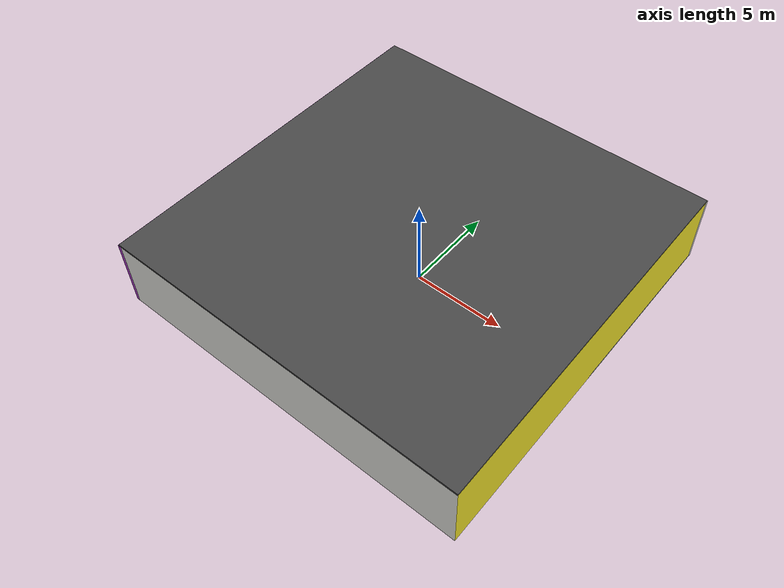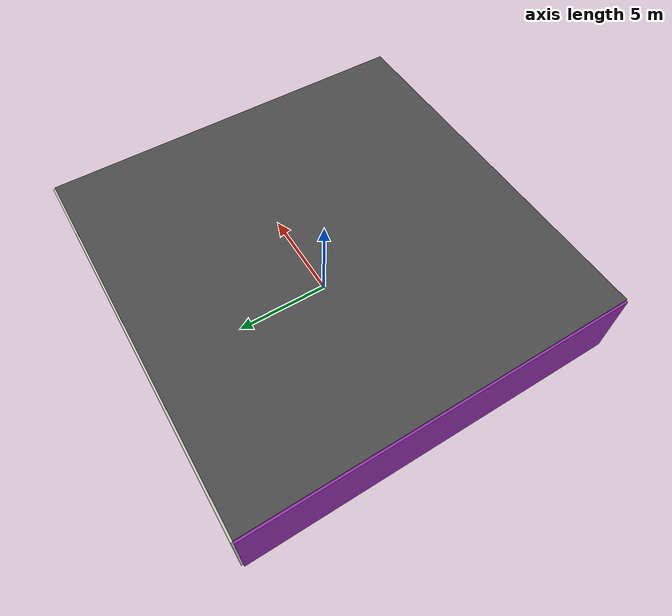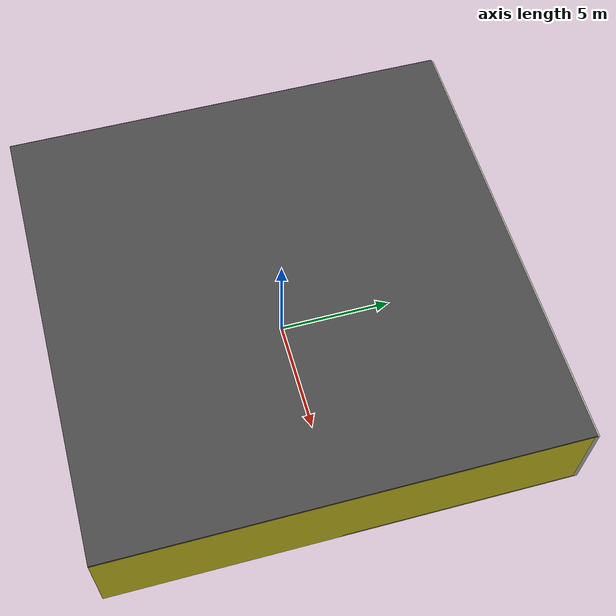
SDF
<sdf version="1.4">
 <world name="default">
  <physics type="ode">
   <max_step_size>0.001</max_step_size>
   <real_time_factor>1</real_time_factor>
   <real_time_update_rate>1000</real_time_update_rate>
   <gravity>0 0 -9.8</gravity>
  </physics>
  <scene><ambient>0.4 0.4 0.4 1</ambient><background>0.7 0.7 0.7 1</background><shadows>1</shadows></scene>
  <model name="Surrounding">
   <static>1</static>
   <link name="Ceiling">
    <collision name="Ceiling_Collision"><geometry><box><size>20 20 0.1</size></box></geometry></collision>
    <visual name="Ceiling_Visual">
     <geometry><box><size>20 20 0.1</size></box></geometry>
     <material>
      <script><uri>file://media/materials/scripts/gazebo.material</uri><name>Gazebo/DarkGrey</name></script>
     </material>
    </visual>
    <pose>0 0 4.05 0 0 0</pose>
   </link>
   <link name="Wall_South">
    <collision name="Wall_South_Collision">
     <geometry><box><size>20 0 4</size></box></geometry>
     <pose>0 0 2 0 -0 0</pose>
    </collision>
    <visual name="Wall_South_Visual">
     <pose>0 0 2 0 -0 0</pose>
     <geometry><box><size>20 0 4</size></box></geometry>
     <material>
      <script><uri>file://media/materials/scripts/gazebo.material</uri><name>Gazebo/CeilingTiled</name></script>
     </material>
    </visual>
    <velocity_decay><linear>0</linear><angular>0</angular></velocity_decay>
    <pose>0 -10 0 0 -0 0</pose>
   </link>
   <link name="Wall_East">
    <collision name="Wall_21_Collision">
     <geometry><box><size>20 0 4</size></box></geometry>
     <pose>0 0 2 0 -0 0</pose>
    </collision>
    <visual name="Wall_21_Visual">
     <pose>0 0 2 0 -0 0</pose>
     <geometry><box><size>20 0 4</size></box></geometry>
     <material>
      <script><uri>file://media/materials/scripts/gazebo.material</uri><name>Gazebo/YellowGlow</name></script>
     </material>
    </visual>
    <velocity_decay><linear>0</linear><angular>0</angular></velocity_decay>
    <pose>10 0 0 0 -0 1.5708</pose>
   </link>
   <link name="Wall_North">
    <collision name="Wall_22_Collision">
     <geometry><box><size>20 0.2 4</size></box></geometry>
     <pose>0 0 2 0 -0 0</pose>
    </collision>
    <visual name="Wall_22_Visual">
     <pose>0 0 2 0 -0 0</pose>
     <geometry><box><size>20 0.2 4</size></box></geometry>
     <material>
      <script><uri>file://media/materials/scripts/gazebo.material</uri><name>Gazebo/PaintedWall</name></script>
     </material>
    </visual>
    <velocity_decay><linear>0</linear><angular>0</angular></velocity_decay>
    <pose>0 10 0 0 -0 0</pose>
   </link>
   <link name="Wall_West">
    <collision name="Wall_23_Collision">
     <geometry><box><size>20 0.2 4</size></box></geometry>
     <pose>0 0 2 0 -0 0</pose>
    </collision>
    <visual name="Wall_23_Visual">
     <pose>0 0 2 0 -0 0</pose>
     <geometry><box><size>20 0.2 4</size></box></geometry>
     <material>
      <script><uri>file://media/materials/scripts/gazebo.material</uri><name>Gazebo/PurpleGlow</name></script>
     </material>
    </visual>
    <velocity_decay><linear>0</linear><angular>0</angular></velocity_decay>
    <pose>-10 0 0 0 0 -1.5708</pose>
   </link>
   <link name="Ground_link">
    <collision name="collision">
     <pose>0 0 .05 0 -0 0</pose>
     <geometry><box><size>20 20 0.1</size></box></geometry>
    </collision>
    <visual name="visual">
     <pose>0 0 .05 0 -0 0</pose>
     <geometry><box><size>20 20 0.1</size></box></geometry>
     <material>
      <script><uri>file://media/materials/scripts/gazebo.material</uri><name>Gazebo/BlueTransparent</name></script>
     </material>
    </visual>
   </link>
   <static>1</static>
  </model>
  <spherical_coordinates>
   <surface_model>EARTH_WGS84</surface_model>
   <latitude_deg>0</latitude_deg>
   <longitude_deg>0</longitude_deg>
   <elevation>0</elevation>
   <heading_deg>0</heading_deg>
  </spherical_coordinates>
  <light name="lightball_0" type="diffuse">
   <diffuse>0.8 0.8 0.8 1</diffuse>
   <specular>0.2 0.2 0.2 1</specular>
   <attenuation>
    <range>100</range>
    <constant>0.7</constant>
    <linear>0.01</linear>
    <quadratic>0.001</quadratic>
   </attenuation>
   <direction>-0.5 0.1 -0.9</direction>
   <pose>2.72060847785 -1.37229901018 1.46708877382 0 0 0</pose>
  </light>
  <light name="lightball_1" type="diffuse">
   <diffuse>0.8 0.8 0.8 1</diffuse>
   <specular>0.2 0.2 0.2 1</specular>
   <attenuation>
    <range>100</range>
    <constant>0.7</constant>
    <linear>0.01</linear>
    <quadratic>0.001</quadratic>
   </attenuation>
   <direction>-0.5 0.1 -0.9</direction>
   <pose>2.85950688129 -4.45084647905 2.56677007962 0 0 0</pose>
  </light>
  <light name="lightball_2" type="diffuse">
   <diffuse>0.8 0.8 0.8 1</diffuse>
   <specular>0.2 0.2 0.2 1</specular>
   <attenuation>
    <range>100</range>
    <constant>0.7</constant>
    <linear>0.01</linear>
    <quadratic>0.001</quadratic>
   </attenuation>
   <direction>-0.5 0.1 -0.9</direction>
   <pose>-5.3189451262 -0.0315190574709 1.75989248827 0 0 0</pose>
  </light>
  <light name="lightball_3" type="diffuse">
   <diffuse>0.8 0.8 0.8 1</diffuse>
   <specular>0.2 0.2 0.2 1</specular>
   <attenuation>
    <range>100</range>
    <constant>0.7</constant>
    <linear>0.01</linear>
    <quadratic>0.001</quadratic>
   </attenuation>
   <direction>-0.5 0.1 -0.9</direction>
   <pose>-5.00111033837 -2.45133904079 2.31124357584 0 0 0</pose>
  </light>
  <light name="lightball_4" type="diffuse">
   <diffuse>0.8 0.8 0.8 1</diffuse>
   <specular>0.2 0.2 0.2 1</specular>
   <attenuation>
    <range>100</range>
    <constant>0.7</constant>
    <linear>0.01</linear>
    <quadratic>0.001</quadratic>
   </attenuation>
   <direction>-0.5 0.1 -0.9</direction>
   <pose>-1.01476616275 6.94431679853 2.66458838003 0 0 0</pose>
  </light>
  <light name="lightball_5" type="diffuse">
   <diffuse>0.8 0.8 0.8 1</diffuse>
   <specular>0.2 0.2 0.2 1</specular>
   <attenuation>
    <range>100</range>
    <constant>0.7</constant>
    <linear>0.01</linear>
    <quadratic>0.001</quadratic>
   </attenuation>
   <direction>-0.5 0.1 -0.9</direction>
   <pose>-0.875112436403 -8.8095985914 1.62774327258 0 0 0</pose>
  </light>
  <light name="lightball_6" type="diffuse">
   <diffuse>0.8 0.8 0.8 1</diffuse>
   <specular>0.2 0.2 0.2 1</specular>
   <attenuation>
    <range>100</range>
    <constant>0.7</constant>
    <linear>0.01</linear>
    <quadratic>0.001</quadratic>
   </attenuation>
   <direction>-0.5 0.1 -0.9</direction>
   <pose>-4.44080826568 -2.37548925545 3.70830002976 0 0 0</pose>
  </light>
  <light name="lightball_7" type="diffuse">
   <diffuse>0.8 0.8 0.8 1</diffuse>
   <specular>0.2 0.2 0.2 1</specular>
   <attenuation>
    <range>100</range>
    <constant>0.7</constant>
    <linear>0.01</linear>
    <quadratic>0.001</quadratic>
   </attenuation>
   <direction>-0.5 0.1 -0.9</direction>
   <pose>-0.0377900386607 8.52704653645 3.71465905356 0 0 0</pose>
  </light>
  <light name="lightball_8" type="diffuse">
   <diffuse>0.8 0.8 0.8 1</diffuse>
   <specular>0.2 0.2 0.2 1</specular>
   <attenuation>
    <range>100</range>
    <constant>0.7</constant>
    <linear>0.01</linear>
    <quadratic>0.001</quadratic>
   </attenuation>
   <direction>-0.5 0.1 -0.9</direction>
   <pose>1.82576182783 4.99478058297 1.0864904127 0 0 0</pose>
  </light>
  <light name="lightball_9" type="diffuse">
   <diffuse>0.8 0.8 0.8 1</diffuse>
   <specular>0.2 0.2 0.2 1</specular>
   <attenuation>
    <range>100</range>
    <constant>0.7</constant>
    <linear>0.01</linear>
    <quadratic>0.001</quadratic>
   </attenuation>
   <direction>-0.5 0.1 -0.9</direction>
   <pose>-4.25776578074 -5.25868846972 0.958182184791 0 0 0</pose>
  </light>
  <light name="lightball_10" type="diffuse">
   <diffuse>0.8 0.8 0.8 1</diffuse>
   <specular>0.2 0.2 0.2 1</specular>
   <attenuation>
    <range>100</range>
    <constant>0.7</constant>
    <linear>0.01</linear>
    <quadratic>0.001</quadratic>
   </attenuation>
   <direction>-0.5 0.1 -0.9</direction>
   <pose>-2.34114839784 -2.90336278634 2.31830596806 0 0 0</pose>
  </light>
  <include><uri>model://table</uri><pose>-7.55016492445 -7.62151128339 0 0 0 0.617915928718</pose></include>
  <include>
   <uri>model://robocup_3Dsim_goal</uri>
   <pose>-4.94707639203 -1.53620872471 0 0 0 0.753371092544</pose>
  </include>
  <include><uri>model://cabinet</uri><pose>1.21526456302 -3.98403175547 0 0 0 3.09845602536</pose></include>
  <include><uri>model://cabinet</uri><pose>7.67257797018 2.00555996229 0 0 0 0.813058722027</pose></include>
  <include>
   <uri>model://construction_cone</uri>
   <pose>6.74360865881 7.44171368499 0 0 0 2.37439473903</pose>
  </include>
 </world>
</sdf>

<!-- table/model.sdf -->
<sdf version="1.5">
  <model name="table">
    <static>true</static>
    <link name="link">
      <collision name="surface">
        <pose>0 0 1.0 0 0 0</pose>
        <geometry>
          <box>
            <size>1.5 0.8 0.03</size>
          </box>
        </geometry>
        <surface>
          <friction>
            <ode>
              <mu>0.6</mu>
              <mu2>0.6</mu2>
            </ode>
          </friction>
        </surface>
      </collision>
      <visual name="visual1">
        <pose>0 0 1.0 0 0 0</pose>
        <geometry>
          <box>
            <size>1.5 0.8 0.03</size>
          </box>
        </geometry>
        <material>
          <script>
            <uri>model://media/materials/scripts/gazebo.material</uri>
            <name>Gazebo/Wood</name>
          </script>
        </material>
      </visual>
      <collision name="front_left_leg">
        <pose>0.68 0.38 0.5 0 0 0</pose>
        <geometry>
          <cylinder>
            <radius>0.02</radius>
            <length>1.0</length>
          </cylinder>
        </geometry>
      </collision>
      <visual name="front_left_leg">
        <pose>0.68 0.38 0.5 0 0 0</pose>
        <geometry>
          <cylinder>
            <radius>0.02</radius>
            <length>1.0</length>
          </cylinder>
        </geometry>
        <material>
          <script>
            <uri>model://media/materials/scripts/gazebo.material</uri>
            <name>Gazebo/Grey</name>
          </script>
        </material>
      </visual>
      <collision name="front_right_leg">
        <pose>0.68 -0.38 0.5 0 0 0</pose>
        <geometry>
          <cylinder>
            <radius>0.02</radius>
            <length>1.0</length>
          </cylinder>
        </geometry>
      </collision>
      <visual name="front_right_leg">
        <pose>0.68 -0.38 0.5 0 0 0</pose>
        <geometry>
          <cylinder>
            <radius>0.02</radius>
            <length>1.0</length>
          </cylinder>
        </geometry>
        <material>
          <script>
            <uri>model://media/materials/scripts/gazebo.material</uri>
            <name>Gazebo/Grey</name>
          </script>
        </material>
      </visual>
      <collision name="back_right_leg">
        <pose>-0.68 -0.38 0.5 0 0 0</pose>
        <geometry>
          <cylinder>
            <radius>0.02</radius>
            <length>1.0</length>
          </cylinder>
        </geometry>
      </collision>
      <visual name="back_right_leg">
        <pose>-0.68 -0.38 0.5 0 0 0</pose>
        <geometry>
          <cylinder>
            <radius>0.02</radius>
            <length>1.0</length>
          </cylinder>
        </geometry>
        <material>
          <script>
            <uri>model://media/materials/scripts/gazebo.material</uri>
            <name>Gazebo/Grey</name>
          </script>
        </material>
      </visual>
      <collision name="back_left_leg">
        <pose>-0.68 0.38 0.5 0 0 0</pose>
        <geometry>
          <cylinder>
            <radius>0.02</radius>
            <length>1.0</length>
          </cylinder>
        </geometry>
      </collision>
      <visual name="back_left_leg">
        <pose>-0.68 0.38 0.5 0 0 0</pose>
        <geometry>
          <cylinder>
            <radius>0.02</radius>
            <length>1.0</length>
          </cylinder>
        </geometry>
        <material>
          <script>
            <uri>model://media/materials/scripts/gazebo.material</uri>
            <name>Gazebo/Grey</name>
          </script>
        </material>
      </visual>
    </link>
  </model>
</sdf>

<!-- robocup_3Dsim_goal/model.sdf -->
<sdf version="1.5">
  <model name="robocup_3d_goal">
    <static>true</static>
    <link name="left_post">
      <pose>0 1.05 0.45 0 0 0</pose>
      <collision name="collision">
        <geometry>
          <cylinder>
            <radius>0.05</radius>
            <length>0.9</length>
          </cylinder>
        </geometry>
      </collision>
      <visual name="visual">
        <geometry>
          <cylinder>
            <radius>0.05</radius>
            <length>0.9</length>
          </cylinder>
        </geometry>
        <material>
          <script>
            <uri>file://media/materials/scripts/gazebo.material</uri>
            <name>Gazebo/ZincYellow</name>
          </script>
        </material>
      </visual>
    </link>
    <link name="left_support_horiz_lower">
      <pose>0.30 1.05 0.01 0 0 0</pose>
      <collision name="collision">
        <geometry>
          <box>
            <size>0.50 0.02 0.02</size>
          </box>
        </geometry>
      </collision>
      <visual name="visual">
        <geometry>
          <box>
            <size>0.50 0.02 0.02</size>
          </box>
        </geometry>
        <material>
          <script>
            <uri>file://media/materials/scripts/gazebo.material</uri>
            <name>Gazebo/White</name>
          </script>
        </material>
      </visual>
    </link>
    <link name="left_support_horiz_upper">
      <pose>0.30 1.05 0.79 0 0 0</pose>
      <collision name="collision">
        <geometry>
          <box>
            <size>0.50 0.02 0.02</size>
          </box>
        </geometry>
      </collision>
      <visual name="visual">
        <geometry>
          <box>
            <size>0.50 0.02 0.02</size>
          </box>
        </geometry>
        <material>
          <script>
            <uri>file://media/materials/scripts/gazebo.material</uri>
            <name>Gazebo/White</name>
          </script>
        </material>
      </visual>
    </link>
    <link name="left_support_vertical">
      <pose>0.56 1.05 0.4 0 1.5708 0</pose>
      <collision name="collision">
        <geometry>
          <box>
            <size>0.80 0.02 0.02</size>
          </box>
        </geometry>
      </collision>
      <visual name="visual">
        <geometry>
          <box>
            <size>0.80 0.02 0.02</size>
          </box>
        </geometry>
        <material>
          <script>
            <uri>file://media/materials/scripts/gazebo.material</uri>
            <name>Gazebo/White</name>
          </script>
        </material>
      </visual>
    </link>
    <link name="right_support_horiz_lower">
      <pose>0.30 -1.05 0.01 0 0 0</pose>
      <collision name="collision">
        <geometry>
          <box>
            <size>0.50 0.02 0.02</size>
          </box>
        </geometry>
      </collision>
      <visual name="visual">
        <geometry>
          <box>
            <size>0.50 0.02 0.02</size>
          </box>
        </geometry>
        <material>
          <script>
            <uri>file://media/materials/scripts/gazebo.material</uri>
            <name>Gazebo/White</name>
          </script>
        </material>
      </visual>
    </link>
    <link name="right_support_horiz_upper">
      <pose>0.30 -1.05 0.79 0 0 0</pose>
      <collision name="collision">
        <geometry>
          <box>
            <size>0.50 0.02 0.02</size>
          </box>
        </geometry>
      </collision>
      <visual name="visual">
        <geometry>
          <box>
            <size>0.50 0.02 0.02</size>
          </box>
        </geometry>
        <material>
          <script>
            <uri>file://media/materials/scripts/gazebo.material</uri>
            <name>Gazebo/White</name>
          </script>
        </material>
      </visual>
    </link>
    <link name="right_support_vertical">
      <pose>0.56 -1.05 0.4 0 1.5708 0</pose>
      <collision name="collision">
        <geometry>
          <box>
            <size>0.80 0.02 0.02</size>
          </box>
        </geometry>
      </collision>
      <visual name="visual">
        <geometry>
          <box>
            <size>0.80 0.02 0.02</size>
          </box>
        </geometry>
        <material>
          <script>
            <uri>file://media/materials/scripts/gazebo.material</uri>
            <name>Gazebo/White</name>
          </script>
        </material>
      </visual>
    </link>
    <link name="center_support_horiz_lower">
      <pose>0.56 0 0.01 0 1.5708 0</pose>
      <collision name="collision">
        <geometry>
          <box>
            <size>0.02 2.08 0.02</size>
          </box>
        </geometry>
      </collision>
      <visual name="visual">
        <geometry>
          <box>
            <size>0.02 2.08 0.02</size>
          </box>
        </geometry>
        <material>
          <script>
            <uri>file://media/materials/scripts/gazebo.material</uri>
            <name>Gazebo/White</name>
          </script>
        </material>
      </visual>
    </link>
    <link name="center_support_horiz_upper">
      <pose>0.56 0 0.79 0 1.5708 0</pose>
      <collision name="collision">
        <geometry>
          <box>
            <size>0.02 2.08 0.02</size>
          </box>
        </geometry>
      </collision>
      <visual name="visual">
        <geometry>
          <box>
            <size>0.02 2.08 0.02</size>
          </box>
        </geometry>
        <material>
          <script>
            <uri>file://media/materials/scripts/gazebo.material</uri>
            <name>Gazebo/White</name>
          </script>
        </material>
      </visual>
    </link>
    <link name="right_post">
      <pose>0 -1.05 0.45 0 0 0</pose>
      <collision name="collision">
        <geometry>
          <cylinder>
            <radius>0.05</radius>
            <length>0.9</length>
          </cylinder>
        </geometry>
      </collision>
      <visual name="visual">
        <geometry>
          <cylinder>
            <radius>0.05</radius>
            <length>0.9</length>
          </cylinder>
        </geometry>
        <material>
          <script>
            <uri>file://media/materials/scripts/gazebo.material</uri>
            <name>Gazebo/ZincYellow</name>
          </script>
        </material>
      </visual>
    </link>
    <link name="crossbar">
      <pose>0 0 0.85 1.57 1.57 0</pose>
      <collision name="collision">
        <geometry>
          <cylinder>
            <radius>0.05</radius>
            <length>2.0</length>
          </cylinder>
        </geometry>
      </collision>
      <visual name="visual">
        <geometry>
          <cylinder>
            <radius>0.05</radius>
            <length>2.0</length>
          </cylinder>
        </geometry>
        <material>
          <script>
            <uri>file://media/materials/scripts/gazebo.material</uri>
            <name>Gazebo/ZincYellow</name>
          </script>
        </material>
      </visual>
    </link>
    <link name="center_net">
      <pose>0.56 0 0.40 0 0 0</pose>
      <collision name="collision">
        <geometry>
          <box>
            <size>0.01 2.1 0.80</size>
          </box>
        </geometry>
      </collision>
      <visual name="visual">
        <geometry>
          <box>
            <size>0.01 2.1 0.80</size>
          </box>
        </geometry>
        <material>
          <script>
            <uri>model://../model_source/models/robocup09_spl_field/materials/scripts/</uri>
            <uri>model://../model_source/models/robocup09_spl_field/materials/textures/</uri>
            <name>RoboCup/Net</name>
          </script>
        </material>
      </visual>
    </link>
    <link name="left_net">
      <pose>0.30 1.05 0.40 0 0 0</pose>
      <collision name="collision">
        <geometry>
          <box>
            <size>0.50 0.01 0.76</size>
          </box>
        </geometry>
      </collision>
      <visual name="visual">
        <geometry>
          <box>
            <size>0.50 0.01 0.76</size>
          </box>
        </geometry>
        <material>
          <script>
            <uri>model://../model_source/models/robocup09_spl_field/materials/scripts/</uri>
            <uri>model://../model_source/models/robocup09_spl_field/materials/textures/</uri>
            <name>RoboCup/Net</name>
          </script>
        </material>
      </visual>
    </link>
    <link name="right_net">
      <pose>0.30 -1.05 0.40 0 0 0</pose>
      <collision name="collision">
        <geometry>
          <box>
            <size>0.50 0.01 0.76</size>
          </box>
        </geometry>
      </collision>
      <visual name="visual">
        <geometry>
          <box>
            <size>0.50 0.01 0.76</size>
          </box>
        </geometry>
        <material>
          <script>
            <uri>model://../model_source/models/robocup09_spl_field/materials/scripts/</uri>
            <uri>model://../model_source/models/robocup09_spl_field/materials/textures/</uri>
            <name>RoboCup/Net</name>
          </script>
        </material>
      </visual>
    </link>
  </model>
</sdf>

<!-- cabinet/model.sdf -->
<sdf version="1.5">
  <model name="cabinet">
    <static>true</static>
    <link name="cabinet_bottom_plate">
      <inertial>
        <pose>0 0 -1 0 0 0</pose>
        <inertia>
          <ixx>2.050000</ixx>
          <ixy>0</ixy>
          <ixz>0</ixz>
          <iyy>2.050000</iyy>
          <iyz>0</iyz>
          <izz>2.050000</izz>
        </inertia>
        <mass>25.000000</mass>
      </inertial>
      <collision name="cabinet_bottom_plate_geom">
        <pose>0 0 0.010000 0 0 0</pose>
        <geometry>
          <box>
            <size>0.450000 0.450000 0.020000</size>
          </box>
        </geometry>
      </collision>
      <visual name="cabinet_bottom_plate_geom_visual">
        <pose>0 0 0.010000 0 0 0</pose>
        <geometry>
          <box>
            <size>0.450000 0.450000 0.020000</size>
          </box>
        </geometry>
        <material>
          <script>
            <uri>model://media/materials/scripts/gazebo.material</uri>
            <name>Gazebo/Wood</name>
          </script>
        </material>
      </visual>
      <collision name="cabinet_bottom_plate_geom_cabinet_back_plate">
        <pose>0.235000 0 0.510000 0 0 0</pose>
        <geometry>
          <box>
            <size>0.020000 0.450000 1.020000</size>
          </box>
        </geometry>
      </collision>
      <visual name="cabinet_bottom_plate_geom_cabinet_back_plate_visual">
        <pose>0.235000 0 0.510000 0 0 0</pose>
        <geometry>
          <box>
            <size>0.020000 0.450000 1.020000</size>
          </box>
        </geometry>
        <material>
          <script>
            <uri>model://media/materials/scripts/gazebo.material</uri>
            <name>Gazebo/Wood</name>
          </script>
        </material>
      </visual>
      <collision name="cabinet_bottom_plate_geom_cabinet_left_plate">
        <pose>0 0.235000 0.510000 0 0 0</pose>
        <geometry>
          <box>
            <size>0.450000 0.020000 1.020000</size>
          </box>
        </geometry>
      </collision>
      <visual name="cabinet_bottom_plate_geom_cabinet_left_plate_visual">
        <pose>0 0.235000 0.510000 0 0 0</pose>
        <geometry>
          <box>
            <size>0.450000 0.020000 1.020000</size>
          </box>
        </geometry>
        <material>
          <script>
            <uri>model://media/materials/scripts/gazebo.material</uri>
            <name>Gazebo/Wood</name>
          </script>
        </material>
      </visual>
      <collision name="cabinet_bottom_plate_geom_cabinet_middle_plate">
        <pose>0 0 0.510000 0 0 0</pose>
        <geometry>
          <box>
            <size>0.450000 0.450000 0.020000</size>
          </box>
        </geometry>
      </collision>
      <visual name="cabinet_bottom_plate_geom_cabinet_middle_plate_visual">
        <pose>0 0 0.510000 0 0 0</pose>
        <geometry>
          <box>
            <size>0.450000 0.450000 0.020000</size>
          </box>
        </geometry>
        <material>
          <script>
            <uri>model://media/materials/scripts/gazebo.material</uri>
            <name>Gazebo/Wood</name>
          </script>
        </material>
      </visual>
      <collision name="cabinet_bottom_plate_geom_cabinet_right_plate">
        <pose>0 -0.235000 0.510000 0 0 0</pose>
        <geometry>
          <box>
            <size>0.450000 0.020000 1.020000</size>
          </box>
        </geometry>
      </collision>
      <visual name="cabinet_bottom_plate_geom_cabinet_right_plate_visual">
        <pose>0 -0.235000 0.510000 0 0 0</pose>
        <geometry>
          <box>
            <size>0.450000 0.020000 1.020000</size>
          </box>
        </geometry>
        <material>
          <script>
            <uri>model://media/materials/scripts/gazebo.material</uri>
            <name>Gazebo/Wood</name>
          </script>
        </material>
      </visual>
      <collision name="cabinet_bottom_plate_geom_cabinet_top_plate">
        <pose>0 0 1.010000 0 0 0</pose>
        <geometry>
          <box>
            <size>0.450000 0.450000 0.020000</size>
          </box>
        </geometry>
      </collision>
      <visual name="cabinet_bottom_plate_geom_cabinet_top_plate_visual">
        <pose>0 0 1.010000 0 0 0</pose>
        <geometry>
          <box>
            <size>0.450000 0.450000 0.020000</size>
          </box>
        </geometry>
        <material>
          <script>
            <uri>model://media/materials/scripts/gazebo.material</uri>
            <name>Gazebo/Wood</name>
          </script>
        </material>
      </visual>
    </link>
  </model>
</sdf>

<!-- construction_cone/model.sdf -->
<sdf version="1.5">
  <model name="Construction Cone">
    <link name="link">
      <collision name="collision">
        <geometry>
          <mesh>
            <scale>10 10 10</scale>
            <uri>file://isr-testbed/construction_cone/meshes/construction_cone.dae</uri>
          </mesh>
        </geometry>
      </collision>
      <visual name="visual">
        <geometry>
          <mesh>
            <scale>10 10 10</scale>
            <uri>file://isr-testbed/construction_cone/meshes/construction_cone.dae</uri>
          </mesh>
        </geometry>
      </visual>
    </link>
  </model>
</sdf>
